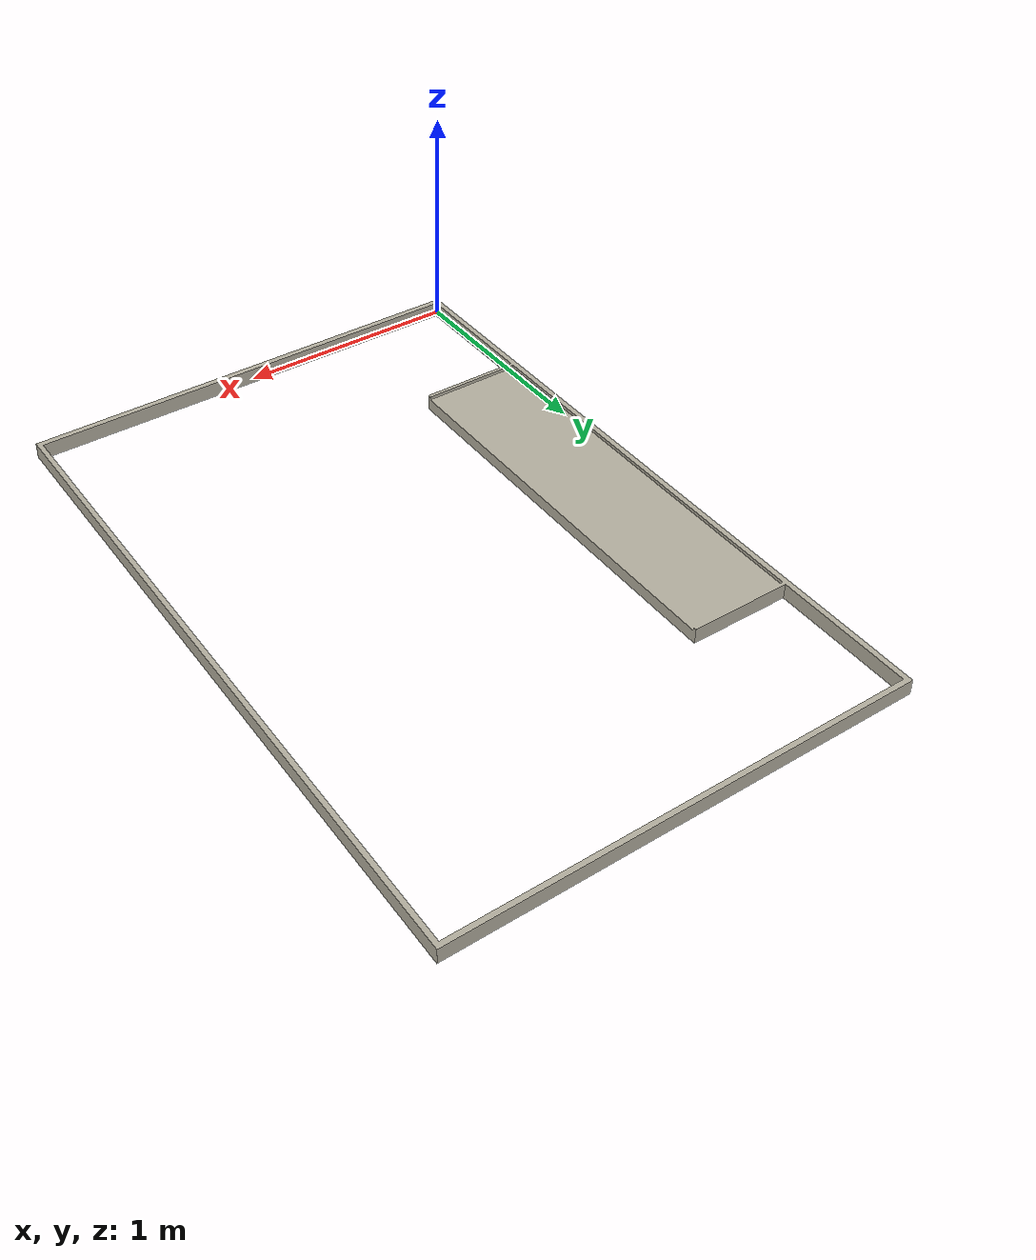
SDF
<?xml version="1.0" ?>
<sdf version="1.9">
  <model name="arena3D">
    <static>true</static>
    <link name="link">
      <collision name="collision">
        <geometry>
          <mesh>
            <!--i don't know why it doesnt work -->
            <uri>meshes/arena3D.stl</uri>
            <scale>0.001 0.001 0.001</scale>
          </mesh>
        </geometry>
        <surface>
          <friction>
            <ode>
              <mu>1.0</mu>
              <mu2>1.0</mu2>
            </ode>
          </friction>
          <bounce/>
          <contact/>
        </surface>
      </collision>

      <visual name="visual">
        <geometry>
            <mesh>
              <uri>meshes/arena3D.dae</uri>
              <scale>0.001 0.001 0.001</scale>
            </mesh>
        </geometry>
        <material>
          <ambient>0.71 0.69 0.63 1.0</ambient>
          <diffuse>0.71 0.69 0.63 1.0</diffuse>
          <specular>0.1 0.1 0.1 1.0</specular>
          <emissive>0 0 0 1.0</emissive>
        </material>
      </visual>
    </link>
  </model>
</sdf>
